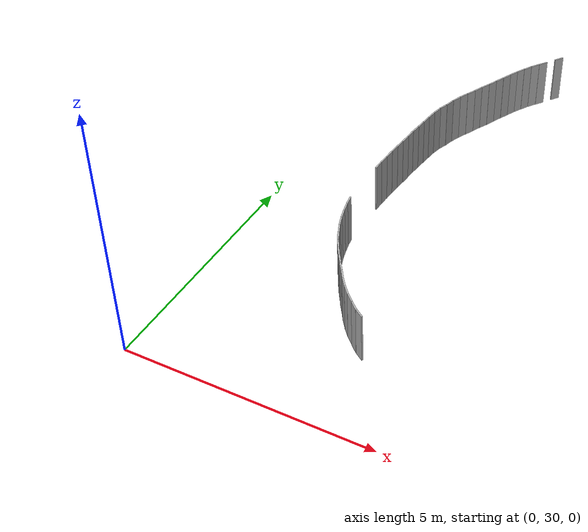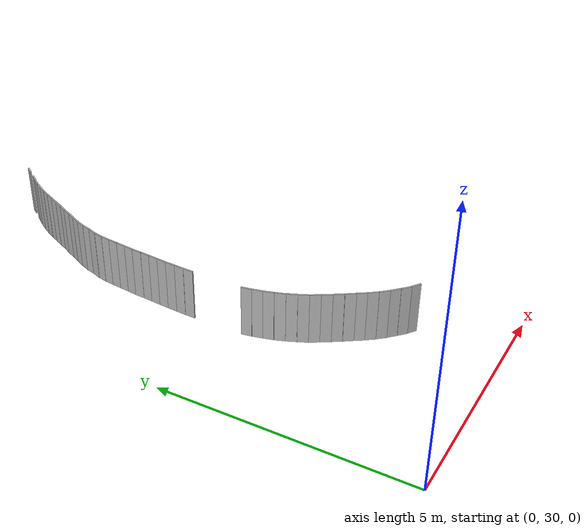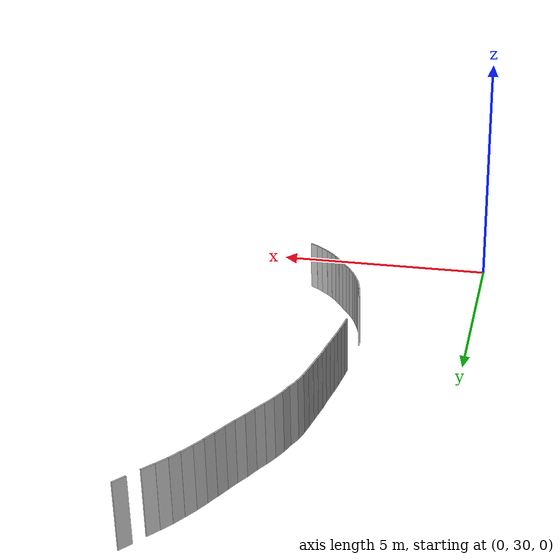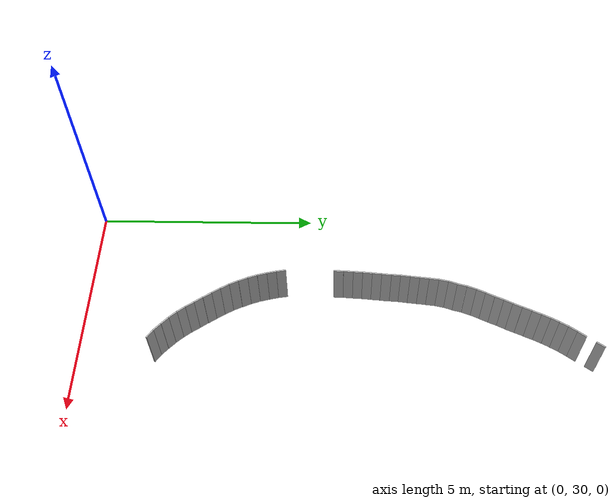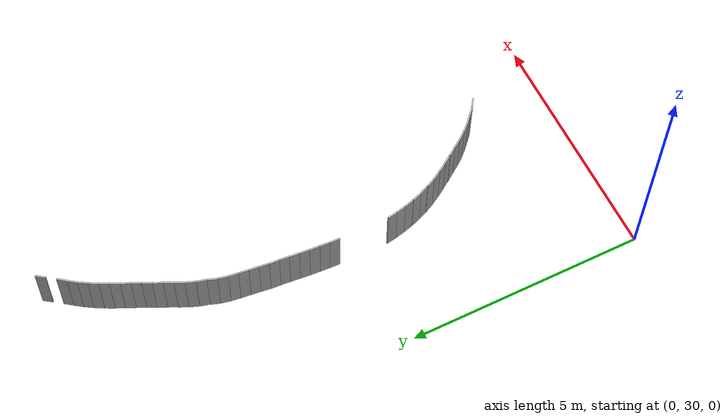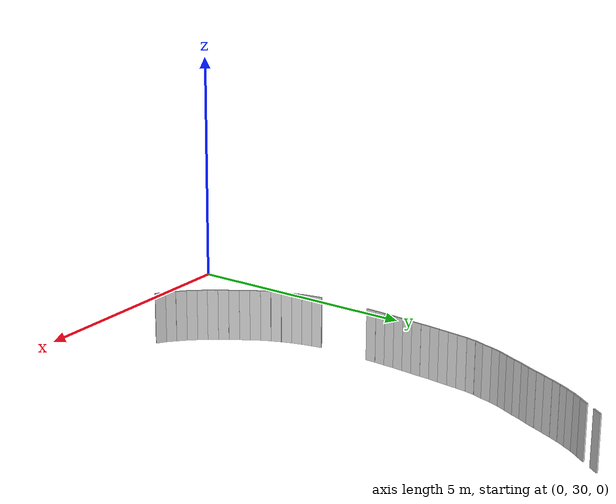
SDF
<sdf version="1.4">
 <world name="default">
  <model name="lattice_154">
   <static>1</static>
   <link name="link">
    <collision name="collision">
     <pose>0.02 0.105 0.525 0 -0 0</pose>
     <geometry><box><size>0.04 0.21 1.05</size></box></geometry>
    </collision>
    <visual name="visual"><geometry><mesh><uri>model://lattice/meshes/lattice.dae</uri></mesh></geometry></visual>
    <velocity_decay><linear>0</linear><angular>0</angular></velocity_decay>
   </link>
   <pose>3.83672 41.0566 0 0 0 -0.621505</pose>
  </model>
  <model name="lattice_205">
   <static>1</static>
   <link name="link">
    <collision name="collision">
     <pose>0.02 0.105 0.525 0 -0 0</pose>
     <geometry><box><size>0.04 0.21 1.05</size></box></geometry>
    </collision>
    <visual name="visual"><geometry><mesh><uri>model://lattice/meshes/lattice.dae</uri></mesh></geometry></visual>
    <velocity_decay><linear>0</linear><angular>0</angular></velocity_decay>
   </link>
   <pose>3.08863 39.8169 0 0 0 -0.424727</pose>
  </model>
  <model name="lattice_297">
   <static>1</static>
   <link name="link">
    <collision name="collision">
     <pose>0.02 0.105 0.525 0 -0 0</pose>
     <geometry><box><size>0.04 0.21 1.05</size></box></geometry>
    </collision>
    <visual name="visual"><geometry><mesh><uri>model://lattice/meshes/lattice.dae</uri></mesh></geometry></visual>
    <velocity_decay><linear>0</linear><angular>0</angular></velocity_decay>
   </link>
   <pose>3.46721 40.5398 0 0 0 -0.601782</pose>
  </model>
  <model name="lattice_324">
   <static>1</static>
   <link name="link">
    <collision name="collision">
     <pose>0.02 0.105 0.525 0 -0 0</pose>
     <geometry><box><size>0.04 0.21 1.05</size></box></geometry>
    </collision>
    <visual name="visual"><geometry><mesh><uri>model://lattice/meshes/lattice.dae</uri></mesh></geometry></visual>
    <velocity_decay><linear>0</linear><angular>0</angular></velocity_decay>
   </link>
   <pose>3.26224 40.189 0 0 0 -0.507843</pose>
  </model>
  <model name="lattice_343">
   <static>1</static>
   <link name="link">
    <collision name="collision">
     <pose>0.02 0.105 0.525 0 -0 0</pose>
     <geometry><box><size>0.04 0.21 1.05</size></box></geometry>
    </collision>
    <visual name="visual"><geometry><mesh><uri>model://lattice/meshes/lattice.dae</uri></mesh></geometry></visual>
    <velocity_decay><linear>0</linear><angular>0</angular></velocity_decay>
   </link>
   <pose>3.36415 40.3648 0 0 0 -0.521417</pose>
  </model>
  <model name="lattice_344">
   <static>1</static>
   <link name="link">
    <collision name="collision">
     <pose>0.02 0.105 0.525 0 -0 0</pose>
     <geometry><box><size>0.04 0.21 1.05</size></box></geometry>
    </collision>
    <visual name="visual"><geometry><mesh><uri>model://lattice/meshes/lattice.dae</uri></mesh></geometry></visual>
    <velocity_decay><linear>0</linear><angular>0</angular></velocity_decay>
   </link>
   <pose>3.5888 40.7104 0 0 0 -0.633509</pose>
  </model>
  <model name="lattice_345">
   <static>1</static>
   <link name="link">
    <collision name="collision">
     <pose>0.02 0.105 0.525 0 -0 0</pose>
     <geometry><box><size>0.04 0.21 1.05</size></box></geometry>
    </collision>
    <visual name="visual"><geometry><mesh><uri>model://lattice/meshes/lattice.dae</uri></mesh></geometry></visual>
    <velocity_decay><linear>0</linear><angular>0</angular></velocity_decay>
   </link>
   <pose>3.17119 40.0055 0 0 0 -0.472186</pose>
  </model>
  <model name="lattice_346">
   <static>1</static>
   <link name="link">
    <collision name="collision">
     <pose>0.02 0.105 0.525 0 -0 0</pose>
     <geometry><box><size>0.04 0.21 1.05</size></box></geometry>
    </collision>
    <visual name="visual"><geometry><mesh><uri>model://lattice/meshes/lattice.dae</uri></mesh></geometry></visual>
    <velocity_decay><linear>0</linear><angular>0</angular></velocity_decay>
   </link>
   <pose>2.99992 39.627 0 0 0 -0.416381</pose>
  </model>
  <model name="lattice_347">
   <static>1</static>
   <link name="link">
    <collision name="collision">
     <pose>0.02 0.105 0.525 0 -0 0</pose>
     <geometry><box><size>0.04 0.21 1.05</size></box></geometry>
    </collision>
    <visual name="visual"><geometry><mesh><uri>model://lattice/meshes/lattice.dae</uri></mesh></geometry></visual>
    <velocity_decay><linear>0</linear><angular>0</angular></velocity_decay>
   </link>
   <pose>2.55713 38.6876 0 0 0 -0.430146</pose>
  </model>
  <model name="lattice_348">
   <static>1</static>
   <link name="link">
    <collision name="collision">
     <pose>0.02 0.105 0.525 0 -0 0</pose>
     <geometry><box><size>0.04 0.21 1.05</size></box></geometry>
    </collision>
    <visual name="visual"><geometry><mesh><uri>model://lattice/meshes/lattice.dae</uri></mesh></geometry></visual>
    <velocity_decay><linear>0</linear><angular>0</angular></velocity_decay>
   </link>
   <pose>2.91327 39.4314 0 0 0 -0.421049</pose>
  </model>
  <model name="lattice_349">
   <static>1</static>
   <link name="link">
    <collision name="collision">
     <pose>0.02 0.105 0.525 0 -0 0</pose>
     <geometry><box><size>0.04 0.21 1.05</size></box></geometry>
    </collision>
    <visual name="visual"><geometry><mesh><uri>model://lattice/meshes/lattice.dae</uri></mesh></geometry></visual>
    <velocity_decay><linear>0</linear><angular>0</angular></velocity_decay>
   </link>
   <pose>2.82058 39.2522 0 0 0 -0.464139</pose>
  </model>
  <model name="lattice_350">
   <static>1</static>
   <link name="link">
    <collision name="collision">
     <pose>0.02 0.105 0.525 0 -0 0</pose>
     <geometry><box><size>0.04 0.21 1.05</size></box></geometry>
    </collision>
    <visual name="visual"><geometry><mesh><uri>model://lattice/meshes/lattice.dae</uri></mesh></geometry></visual>
    <velocity_decay><linear>0</linear><angular>0</angular></velocity_decay>
   </link>
   <pose>2.64658 38.8744 0 0 0 -0.445552</pose>
  </model>
  <model name="lattice_351">
   <static>1</static>
   <link name="link">
    <collision name="collision">
     <pose>0.02 0.105 0.525 0 -0 0</pose>
     <geometry><box><size>0.04 0.21 1.05</size></box></geometry>
    </collision>
    <visual name="visual"><geometry><mesh><uri>model://lattice/meshes/lattice.dae</uri></mesh></geometry></visual>
    <velocity_decay><linear>0</linear><angular>0</angular></velocity_decay>
   </link>
   <pose>2.73875 39.066 0 0 0 -0.405078</pose>
  </model>
  <model name="lattice_352">
   <static>1</static>
   <link name="link">
    <collision name="collision">
     <pose>0.02 0.105 0.525 0 -0 0</pose>
     <geometry><box><size>0.04 0.21 1.05</size></box></geometry>
    </collision>
    <visual name="visual"><geometry><mesh><uri>model://lattice/meshes/lattice.dae</uri></mesh></geometry></visual>
    <velocity_decay><linear>0</linear><angular>0</angular></velocity_decay>
   </link>
   <pose>2.48143 38.4901 0 0 0 -0.362787</pose>
  </model>
  <model name="lattice_353">
   <static>1</static>
   <link name="link">
    <collision name="collision">
     <pose>0.02 0.105 0.525 0 -0 0</pose>
     <geometry><box><size>0.04 0.21 1.05</size></box></geometry>
    </collision>
    <visual name="visual"><geometry><mesh><uri>model://lattice/meshes/lattice.dae</uri></mesh></geometry></visual>
    <velocity_decay><linear>0</linear><angular>0</angular></velocity_decay>
   </link>
   <pose>2.42502 38.2801 0 0 0 -0.252007</pose>
  </model>
  <model name="lattice_354">
   <static>1</static>
   <link name="link">
    <collision name="collision">
     <pose>0.02 0.105 0.525 0 -0 0</pose>
     <geometry><box><size>0.04 0.21 1.05</size></box></geometry>
    </collision>
    <visual name="visual"><geometry><mesh><uri>model://lattice/meshes/lattice.dae</uri></mesh></geometry></visual>
    <velocity_decay><linear>0</linear><angular>0</angular></velocity_decay>
   </link>
   <pose>2.35394 38.0903 0 0 0 -0.337874</pose>
  </model>
  <model name="lattice_355">
   <static>1</static>
   <link name="link">
    <collision name="collision">
     <pose>0.02 0.105 0.525 0 -0 0</pose>
     <geometry><box><size>0.04 0.21 1.05</size></box></geometry>
    </collision>
    <visual name="visual"><geometry><mesh><uri>model://lattice/meshes/lattice.dae</uri></mesh></geometry></visual>
    <velocity_decay><linear>0</linear><angular>0</angular></velocity_decay>
   </link>
   <pose>2.21404 37.0561 0 0 0 -0.113984</pose>
  </model>
  <model name="lattice_356">
   <static>1</static>
   <link name="link">
    <collision name="collision">
     <pose>0.02 0.105 0.525 0 -0 0</pose>
     <geometry><box><size>0.04 0.21 1.05</size></box></geometry>
    </collision>
    <visual name="visual"><geometry><mesh><uri>model://lattice/meshes/lattice.dae</uri></mesh></geometry></visual>
    <velocity_decay><linear>0</linear><angular>0</angular></velocity_decay>
   </link>
   <pose>2.26414 37.4724 0 0 0 -0.094532</pose>
  </model>
  <model name="lattice_357">
   <static>1</static>
   <link name="link">
    <collision name="collision">
     <pose>0.02 0.105 0.525 0 -0 0</pose>
     <geometry><box><size>0.04 0.21 1.05</size></box></geometry>
    </collision>
    <visual name="visual"><geometry><mesh><uri>model://lattice/meshes/lattice.dae</uri></mesh></geometry></visual>
    <velocity_decay><linear>0</linear><angular>0</angular></velocity_decay>
   </link>
   <pose>2.31033 37.8841 0 0 0 -0.224075</pose>
  </model>
  <model name="lattice_358">
   <static>1</static>
   <link name="link">
    <collision name="collision">
     <pose>0.02 0.105 0.525 0 -0 0</pose>
     <geometry><box><size>0.04 0.21 1.05</size></box></geometry>
    </collision>
    <visual name="visual"><geometry><mesh><uri>model://lattice/meshes/lattice.dae</uri></mesh></geometry></visual>
    <velocity_decay><linear>0</linear><angular>0</angular></velocity_decay>
   </link>
   <pose>2.28597 37.6779 0 0 0 -0.123502</pose>
  </model>
  <model name="lattice_359">
   <static>1</static>
   <link name="link">
    <collision name="collision">
     <pose>0.02 0.105 0.525 0 -0 0</pose>
     <geometry><box><size>0.04 0.21 1.05</size></box></geometry>
    </collision>
    <visual name="visual"><geometry><mesh><uri>model://lattice/meshes/lattice.dae</uri></mesh></geometry></visual>
    <velocity_decay><linear>0</linear><angular>0</angular></velocity_decay>
   </link>
   <pose>2.2411 37.2627 0 0 0 -0.092063</pose>
  </model>
  <model name="lattice_360">
   <static>1</static>
   <link name="link">
    <collision name="collision">
     <pose>0.02 0.105 0.525 0 -0 0</pose>
     <geometry><box><size>0.04 0.21 1.05</size></box></geometry>
    </collision>
    <visual name="visual"><geometry><mesh><uri>model://lattice/meshes/lattice.dae</uri></mesh></geometry></visual>
    <velocity_decay><linear>0</linear><angular>0</angular></velocity_decay>
   </link>
   <pose>2.19979 36.8504 0 0 0 -0.055132</pose>
  </model>
  <model name="lattice_361">
   <static>1</static>
   <link name="link">
    <collision name="collision">
     <pose>0.02 0.105 0.525 0 -0 0</pose>
     <geometry><box><size>0.04 0.21 1.05</size></box></geometry>
    </collision>
    <visual name="visual"><geometry><mesh><uri>model://lattice/meshes/lattice.dae</uri></mesh></geometry></visual>
    <velocity_decay><linear>0</linear><angular>0</angular></velocity_decay>
   </link>
   <pose>2.163 36.4355 0 0 0 -0.078438</pose>
  </model>
  <model name="lattice_362">
   <static>1</static>
   <link name="link">
    <collision name="collision">
     <pose>0.02 0.105 0.525 0 -0 0</pose>
     <geometry><box><size>0.04 0.21 1.05</size></box></geometry>
    </collision>
    <visual name="visual"><geometry><mesh><uri>model://lattice/meshes/lattice.dae</uri></mesh></geometry></visual>
    <velocity_decay><linear>0</linear><angular>0</angular></velocity_decay>
   </link>
   <pose>2.14309 36.2265 0 0 0 -0.081817</pose>
  </model>
  <model name="lattice_363">
   <static>1</static>
   <link name="link">
    <collision name="collision">
     <pose>0.02 0.105 0.525 0 -0 0</pose>
     <geometry><box><size>0.04 0.21 1.05</size></box></geometry>
    </collision>
    <visual name="visual"><geometry><mesh><uri>model://lattice/meshes/lattice.dae</uri></mesh></geometry></visual>
    <velocity_decay><linear>0</linear><angular>0</angular></velocity_decay>
   </link>
   <pose>2.13055 36.0164 0 0 0 -0.04853</pose>
  </model>
  <model name="lattice_364">
   <static>1</static>
   <link name="link">
    <collision name="collision">
     <pose>0.02 0.105 0.525 0 -0 0</pose>
     <geometry><box><size>0.04 0.21 1.05</size></box></geometry>
    </collision>
    <visual name="visual"><geometry><mesh><uri>model://lattice/meshes/lattice.dae</uri></mesh></geometry></visual>
    <velocity_decay><linear>0</linear><angular>0</angular></velocity_decay>
   </link>
   <pose>2.18238 36.6435 0 0 0 -0.091736</pose>
  </model>
  <model name="lattice_365">
   <static>1</static>
   <link name="link">
    <collision name="collision">
     <pose>0.02 0.105 0.525 0 -0 0</pose>
     <geometry><box><size>0.04 0.21 1.05</size></box></geometry>
    </collision>
    <visual name="visual"><geometry><mesh><uri>model://lattice/meshes/lattice.dae</uri></mesh></geometry></visual>
    <velocity_decay><linear>0</linear><angular>0</angular></velocity_decay>
   </link>
   <pose>2.11568 35.8051 0 0 0 -0.064319</pose>
  </model>
  <model name="lattice_367">
   <static>1</static>
   <link name="link">
    <collision name="collision">
     <pose>0.02 0.105 0.525 0 -0 0</pose>
     <geometry><box><size>0.04 0.21 1.05</size></box></geometry>
    </collision>
    <visual name="visual"><geometry><mesh><uri>model://lattice/meshes/lattice.dae</uri></mesh></geometry></visual>
    <velocity_decay><linear>0</linear><angular>0</angular></velocity_decay>
   </link>
   <pose>2.10847 35.5901 0 0 0 -0.036731</pose>
  </model>
  <model name="lattice_372">
   <static>1</static>
   <link name="link">
    <collision name="collision">
     <pose>0.02 0.105 0.525 0 -0 0</pose>
     <geometry><box><size>0.04 0.21 1.05</size></box></geometry>
    </collision>
    <visual name="visual"><geometry><mesh><uri>model://lattice/meshes/lattice.dae</uri></mesh></geometry></visual>
    <velocity_decay><linear>0</linear><angular>0</angular></velocity_decay>
   </link>
   <pose>2.13727 34.3245 0 0 -0 0.164156</pose>
  </model>
  <model name="lattice_373">
   <static>1</static>
   <link name="link">
    <collision name="collision">
     <pose>0.02 0.105 0.525 0 -0 0</pose>
     <geometry><box><size>0.04 0.21 1.05</size></box></geometry>
    </collision>
    <visual name="visual"><geometry><mesh><uri>model://lattice/meshes/lattice.dae</uri></mesh></geometry></visual>
    <velocity_decay><linear>0</linear><angular>0</angular></velocity_decay>
   </link>
   <pose>2.24117 33.9113 0 0 -0 0.266641</pose>
  </model>
  <model name="lattice_374">
   <static>1</static>
   <link name="link">
    <collision name="collision">
     <pose>0.02 0.105 0.525 0 -0 0</pose>
     <geometry><box><size>0.04 0.21 1.05</size></box></geometry>
    </collision>
    <visual name="visual"><geometry><mesh><uri>model://lattice/meshes/lattice.dae</uri></mesh></geometry></visual>
    <velocity_decay><linear>0</linear><angular>0</angular></velocity_decay>
   </link>
   <pose>2.39918 33.5091 0 0 -0 0.409237</pose>
  </model>
  <model name="lattice_375">
   <static>1</static>
   <link name="link">
    <collision name="collision">
     <pose>0.02 0.105 0.525 0 -0 0</pose>
     <geometry><box><size>0.04 0.21 1.05</size></box></geometry>
    </collision>
    <visual name="visual"><geometry><mesh><uri>model://lattice/meshes/lattice.dae</uri></mesh></geometry></visual>
    <velocity_decay><linear>0</linear><angular>0</angular></velocity_decay>
   </link>
   <pose>2.18538 34.1149 0 0 -0 0.220722</pose>
  </model>
  <model name="lattice_376">
   <static>1</static>
   <link name="link">
    <collision name="collision">
     <pose>0.02 0.105 0.525 0 -0 0</pose>
     <geometry><box><size>0.04 0.21 1.05</size></box></geometry>
    </collision>
    <visual name="visual"><geometry><mesh><uri>model://lattice/meshes/lattice.dae</uri></mesh></geometry></visual>
    <velocity_decay><linear>0</linear><angular>0</angular></velocity_decay>
   </link>
   <pose>2.49007 33.3122 0 0 -0 0.450506</pose>
  </model>
  <model name="lattice_377">
   <static>1</static>
   <link name="link">
    <collision name="collision">
     <pose>0.02 0.105 0.525 0 -0 0</pose>
     <geometry><box><size>0.04 0.21 1.05</size></box></geometry>
    </collision>
    <visual name="visual"><geometry><mesh><uri>model://lattice/meshes/lattice.dae</uri></mesh></geometry></visual>
    <velocity_decay><linear>0</linear><angular>0</angular></velocity_decay>
   </link>
   <pose>2.3126 33.7038 0 0 -0 0.32861</pose>
  </model>
  <model name="lattice_378">
   <static>1</static>
   <link name="link">
    <collision name="collision">
     <pose>0.02 0.105 0.525 0 -0 0</pose>
     <geometry><box><size>0.04 0.21 1.05</size></box></geometry>
    </collision>
    <visual name="visual"><geometry><mesh><uri>model://lattice/meshes/lattice.dae</uri></mesh></geometry></visual>
    <velocity_decay><linear>0</linear><angular>0</angular></velocity_decay>
   </link>
   <pose>2.6001 33.1291 0 0 -0 0.540872</pose>
  </model>
  <model name="lattice_379">
   <static>1</static>
   <link name="link">
    <collision name="collision">
     <pose>0.02 0.105 0.525 0 -0 0</pose>
     <geometry><box><size>0.04 0.21 1.05</size></box></geometry>
    </collision>
    <visual name="visual"><geometry><mesh><uri>model://lattice/meshes/lattice.dae</uri></mesh></geometry></visual>
    <velocity_decay><linear>0</linear><angular>0</angular></velocity_decay>
   </link>
   <pose>2.8347 32.7745 0 0 -0 0.597026</pose>
  </model>
  <model name="lattice_380">
   <static>1</static>
   <link name="link">
    <collision name="collision">
     <pose>0.02 0.105 0.525 0 -0 0</pose>
     <geometry><box><size>0.04 0.21 1.05</size></box></geometry>
    </collision>
    <visual name="visual"><geometry><mesh><uri>model://lattice/meshes/lattice.dae</uri></mesh></geometry></visual>
    <velocity_decay><linear>0</linear><angular>0</angular></velocity_decay>
   </link>
   <pose>3.07548 32.4232 0 0 -0 0.595967</pose>
  </model>
  <model name="lattice_381">
   <static>1</static>
   <link name="link">
    <collision name="collision">
     <pose>0.02 0.105 0.525 0 -0 0</pose>
     <geometry><box><size>0.04 0.21 1.05</size></box></geometry>
    </collision>
    <visual name="visual"><geometry><mesh><uri>model://lattice/meshes/lattice.dae</uri></mesh></geometry></visual>
    <velocity_decay><linear>0</linear><angular>0</angular></velocity_decay>
   </link>
   <pose>2.71254 32.9502 0 0 -0 0.566308</pose>
  </model>
  <model name="lattice_382">
   <static>1</static>
   <link name="link">
    <collision name="collision">
     <pose>0.02 0.105 0.525 0 -0 0</pose>
     <geometry><box><size>0.04 0.21 1.05</size></box></geometry>
    </collision>
    <visual name="visual"><geometry><mesh><uri>model://lattice/meshes/lattice.dae</uri></mesh></geometry></visual>
    <velocity_decay><linear>0</linear><angular>0</angular></velocity_decay>
   </link>
   <pose>2.95661 32.5958 0 0 -0 0.618788</pose>
  </model>
  <model name="lattice_383">
   <static>1</static>
   <link name="link">
    <collision name="collision">
     <pose>0.02 0.105 0.525 0 -0 0</pose>
     <geometry><box><size>0.04 0.21 1.05</size></box></geometry>
    </collision>
    <visual name="visual"><geometry><mesh><uri>model://lattice/meshes/lattice.dae</uri></mesh></geometry></visual>
    <velocity_decay><linear>0</linear><angular>0</angular></velocity_decay>
   </link>
   <pose>3.20264 32.2601 0 0 -0 0.664618</pose>
  </model>
  <model name="lattice_384">
   <static>1</static>
   <link name="link">
    <collision name="collision">
     <pose>0.02 0.105 0.525 0 -0 0</pose>
     <geometry><box><size>0.04 0.21 1.05</size></box></geometry>
    </collision>
    <visual name="visual"><geometry><mesh><uri>model://lattice/meshes/lattice.dae</uri></mesh></geometry></visual>
    <velocity_decay><linear>0</linear><angular>0</angular></velocity_decay>
   </link>
   <pose>3.34569 32.1002 0 0 -0 0.728315</pose>
  </model>
  <model name="lattice_386">
   <static>1</static>
   <link name="link">
    <collision name="collision">
     <pose>0.02 0.105 0.525 0 -0 0</pose>
     <geometry><box><size>0.04 0.21 1.05</size></box></geometry>
    </collision>
    <visual name="visual"><geometry><mesh><uri>model://lattice/meshes/lattice.dae</uri></mesh></geometry></visual>
    <velocity_decay><linear>0</linear><angular>0</angular></velocity_decay>
   </link>
   <pose>3.6632 31.8116 0 0 -0 0.842293</pose>
  </model>
  <model name="lattice_387">
   <static>1</static>
   <link name="link">
    <collision name="collision">
     <pose>0.02 0.105 0.525 0 -0 0</pose>
     <geometry><box><size>0.04 0.21 1.05</size></box></geometry>
    </collision>
    <visual name="visual"><geometry><mesh><uri>model://lattice/meshes/lattice.dae</uri></mesh></geometry></visual>
    <velocity_decay><linear>0</linear><angular>0</angular></velocity_decay>
   </link>
   <pose>3.83584 31.6966 0 0 -0 0.97431</pose>
  </model>
  <model name="lattice_388">
   <static>1</static>
   <link name="link">
    <collision name="collision">
     <pose>0.02 0.105 0.525 0 -0 0</pose>
     <geometry><box><size>0.04 0.21 1.05</size></box></geometry>
    </collision>
    <visual name="visual"><geometry><mesh><uri>model://lattice/meshes/lattice.dae</uri></mesh></geometry></visual>
    <velocity_decay><linear>0</linear><angular>0</angular></velocity_decay>
   </link>
   <pose>3.50356 31.9565 0 0 -0 0.826355</pose>
  </model>
 </world>
</sdf>
